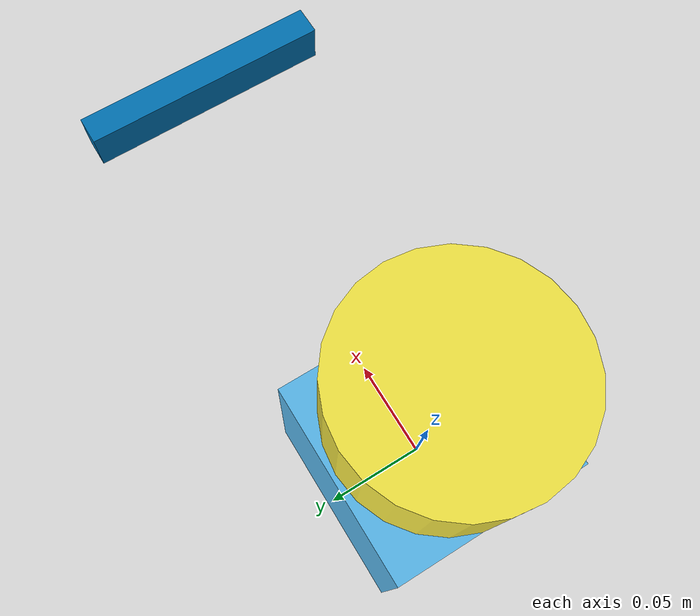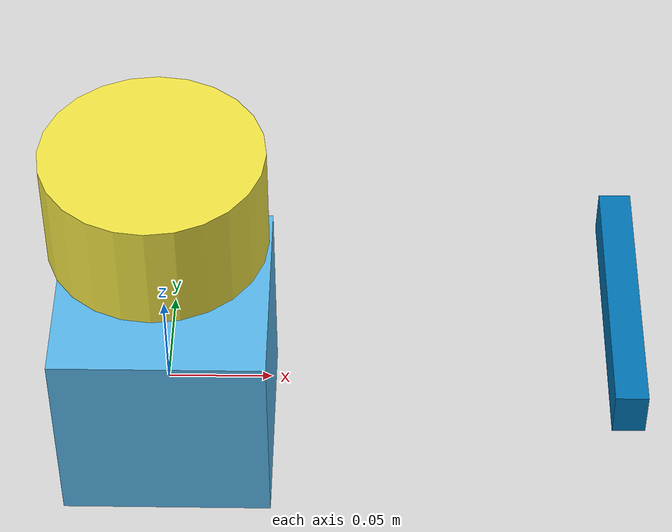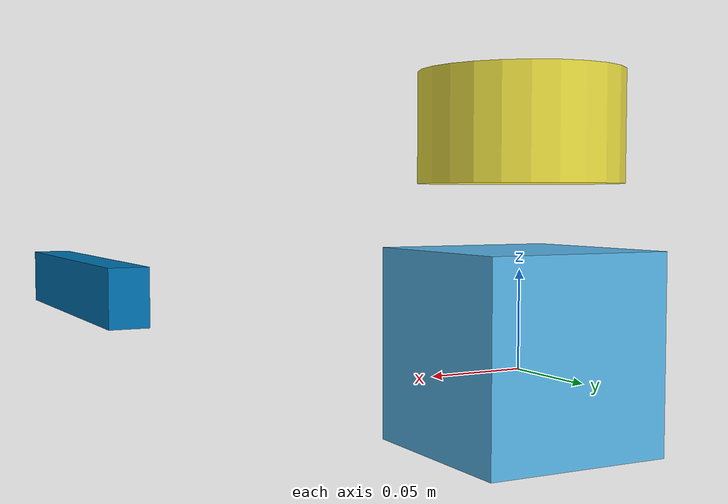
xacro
<?xml version="1.0"?>
<robot name="robot_model" xmlns:xacro="http://ros.org/wiki/xacro">
  <!-- Define some commonly used intertial properties  -->
  <xacro:macro name="box_inertia" params="m w h d">
    <inertial>
      <origin xyz="0 0 0" rpy="${pi/2} 0 ${pi/2}"/>
      <mass value="${m}"/>
      <inertia ixx="${(m/12) * (h*h + d*d)}" ixy="0.0" ixz="0.0" iyy="${(m/12) * (w*w + d*d)}" iyz="0.0" izz="${(m/12) * (w*w + h*h)}"/>
    </inertial>
  </xacro:macro>

  <!-- Robot Base -->
  <link name="base_link">
  	<xacro:box_inertia m="0" w="0" d="0" h="0"/>
  </link>

  <link name="imu_link">
    <visual>
      <geometry>
        <box size="0.1 0.1 0.1"/>
      </geometry>
    </visual>

    <collision>
      <geometry>
        <box size="0.1 0.1 0.1"/>
      </geometry>
    </collision>

    <xacro:box_inertia m="0.1" w="0.1" d="0.1" h="0.1"/>
  </link>

  <joint name="imu_joint" type="fixed">
    <parent link="base_link"/>
    <child link="imu_link"/>
    <origin xyz="0 0 0.01"/>
  </joint>

  <gazebo reference="imu_link">
    <gravity>true</gravity>
    <sensor name="imu_sensor" type="imu">
      <always_on>true</always_on>
      <update_rate>100</update_rate>
      <visualize>true</visualize>
      <topic>data</topic>
      <plugin filename="libgazebo_ros_imu_sensor.so" name="imu_plugin">
        <topicName>imu/data</topicName>
        <bodyName>imu_link</bodyName>
        <updateRateHZ>10.0</updateRateHZ>
        <gaussianNoise>0.0</gaussianNoise>
        <xyzOffset>0 0 0</xyzOffset>
        <rpyOffset>0 0 0</rpyOffset>
        <frameName>imu_link</frameName>
      </plugin>
      <pose>0 0 0 0 0 0</pose>
    </sensor>
  </gazebo>

  <link name="gps_link">
    <visual>
      <geometry>
        <box size="0.1 0.1 0.1"/>
      </geometry>
    </visual>

    <collision>
      <geometry>
        <box size="0.1 0.1 0.1"/>
      </geometry>
    </collision>

    <xacro:box_inertia m="0.1" w="0.1" d="0.1" h="0.1"/>
  </link>

  <joint name="gps_joint" type="fixed">
    <parent link="base_link"/>
    <child link="gps_link"/>
    <origin xyz="0 0 0.01"/>
  </joint>

  <gazebo>
    <plugin name="gps_controller" filename="libhector_gazebo_ros_gps.so">
      <updateRate>10.0</updateRate>
      <bodyName>gps_link</bodyName>
      <frameId>gps_link</frameId>
      <topicName>gps/fix</topicName>
      <velocityTopicName>gps/vel</velocityTopicName>
      <referenceLatitude>49.9</referenceLatitude>
      <referenceLongitude>8.9</referenceLongitude>
      <referenceHeading>0</referenceHeading>
      <referenceAltitude>0</referenceAltitude>
      <gaussianNoise>0.01 0.01 0.1</gaussianNoise> <!-- this is std. dev. not var.-->
      <drift>0.0001 0.0001 0.0001</drift>
    </plugin>
  </gazebo>

  <link name="lidar_link">
    <inertial>
      <origin xyz="0 0 0" rpy="0 0 0"/>
      <mass value="0.125"/>
      <inertia ixx="0.001"  ixy="0"  ixz="0" iyy="0.001" iyz="0" izz="0.001" />
    </inertial>

    <collision>
      <origin xyz="0 0 0" rpy="0 0 0"/>
      <geometry>
         <cylinder radius="0.0508" length="0.055"/>
      </geometry>
    </collision>

    <visual>
      <origin xyz="0 0 0" rpy="0 0 0"/>
      <geometry>
         <cylinder radius="0.0508" length="0.055"/>
      </geometry>
    </visual>
  </link>

  <joint name="lidar_joint" type="fixed">
    <parent link="base_link"/>
    <child link="lidar_link"/>
    <origin xyz="0 0 0.12" rpy="0 0 0"/>
  </joint>

  <gazebo reference="lidar_link">
    <sensor name="lidar" type="ray">
      <always_on>true</always_on>
      <visualize>true</visualize>
      <update_rate>5</update_rate>
      <ray>
        <scan>
          <horizontal>
            <samples>360</samples>
            <resolution>1.000000</resolution>
            <min_angle>0.000000</min_angle>
            <max_angle>6.280000</max_angle>
          </horizontal>
        </scan>
        <range>
          <min>0.120000</min>
          <max>3.5</max>
          <resolution>0.015000</resolution>
        </range>
        <noise>
          <type>gaussian</type>
          <mean>0.0</mean>
          <stddev>0.01</stddev>
        </noise>
      </ray>
      <plugin name="scan" filename="libgazebo_ros_laser.so">
        <topicName>/scan</topicName>
        <output_type>sensor_msgs/LaserScan</output_type>
        <frame_name>lidar_link</frame_name>
      </plugin>
    </sensor>
  </gazebo>

  <link name="camera_link">
    <visual>
      <origin xyz="0 0 0" rpy="0 0 0"/>
      <geometry>
        <box size="0.015 0.130 0.022"/>
      </geometry>
    </visual>

    <collision>
      <origin xyz="0 0 0" rpy="0 0 0"/>
      <geometry>
        <box size="0.015 0.130 0.022"/>
      </geometry>
    </collision>

    <inertial>
      <origin xyz="0 0 0" rpy="0 0 0"/>
      <mass value="0.035"/>
      <inertia ixx="0.001"  ixy="0"  ixz="0" iyy="0.001" iyz="0" izz="0.001" />
    </inertial>
  </link>

  <joint name="camera_joint" type="fixed">
    <parent link="base_link"/>
    <child link="camera_link"/>
    <origin xyz="0.215 0 0.05" rpy="0 0 0"/>
  </joint>

  <link name="camera_depth_frame"/>

  <joint name="camera_depth_joint" type="fixed">
    <origin xyz="0 0 0" rpy="${-pi/2} 0 ${-pi/2}"/>
    <parent link="camera_link"/>
    <child link="camera_depth_frame"/>
  </joint>

  <gazebo reference="camera_link">
    <sensor name="depth_camera" type="depth">
      <visualize>true</visualize>
      <update_rate>30.0</update_rate>
      <camera name="camera">
        <horizontal_fov>1.047198</horizontal_fov>
        <image>
          <width>640</width>
          <height>480</height>
          <format>R8G8B8</format>
        </image>
        <clip>
          <near>0.05</near>
          <far>3</far>
        </clip>
      </camera>
      <plugin name="depth_camera_controller" filename="libgazebo_ros_camera.so">
        <baseline>0.2</baseline>
        <alwaysOn>true</alwaysOn>
        <updateRate>0.0</updateRate>
        <frame_name>camera_depth_frame</frame_name>
        <pointCloudCutoff>0.5</pointCloudCutoff>
        <pointCloudCutoffMax>3.0</pointCloudCutoffMax>
        <distortionK1>0</distortionK1>
        <distortionK2>0</distortionK2>
        <distortionK3>0</distortionK3>
        <distortionT1>0</distortionT1>
        <distortionT2>0</distortionT2>
        <CxPrime>0</CxPrime>
        <Cx>0</Cx>
        <Cy>0</Cy>
        <focalLength>0</focalLength>
        <hackBaseline>0</hackBaseline>
      </plugin>
    </sensor>
  </gazebo>
</robot>
